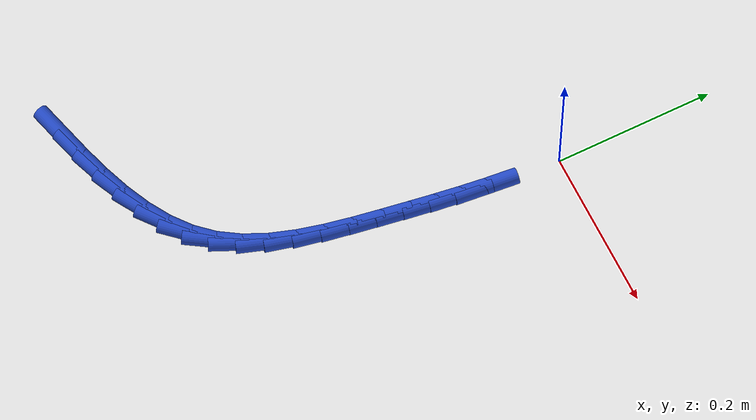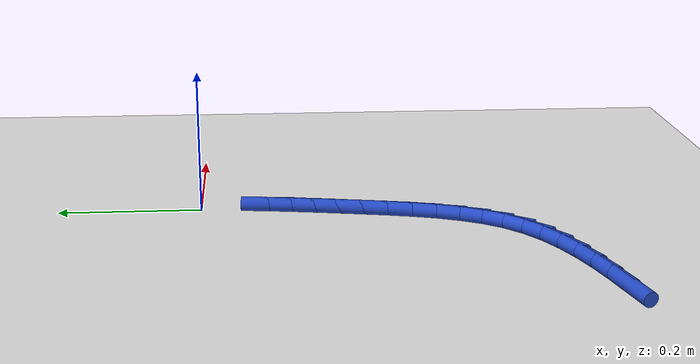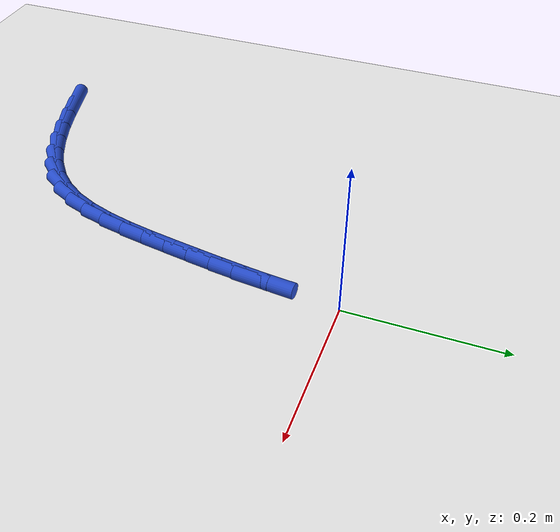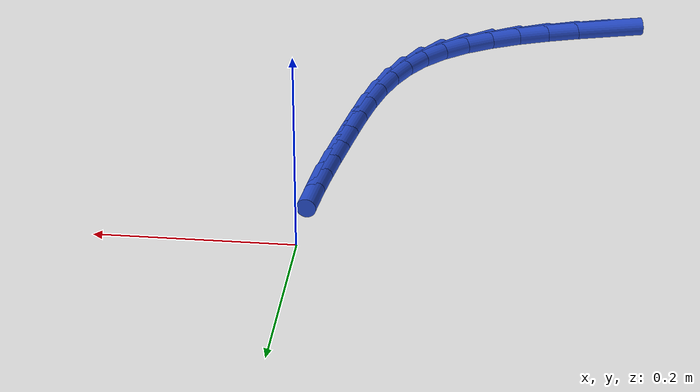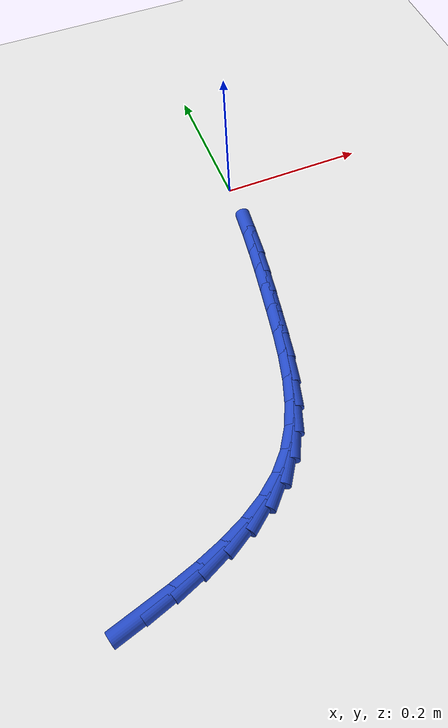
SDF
<sdf version="1.6">
 <world name="default">
  <model name="ground_plane">
   <static>1</static>
   <link name="link">
    <collision name="collision">
     <geometry><plane><normal>0 0 1</normal><size>100 100</size></plane></geometry>
     <surface><friction><ode><mu>100</mu><mu2>50</mu2></ode></friction></surface>
    </collision>
    <visual name="visual">
     <cast_shadows>0</cast_shadows>
     <geometry><plane><normal>0 0 1</normal><size>100 100</size></plane></geometry>
     <material>
      <script><uri>file://media/materials/scripts/gazebo.material</uri><name>Gazebo/WhiteGlow</name></script>
     </material>
    </visual>
   </link>
  </model>
  <model name="line">
   <link name="link_270">
    <pose>-0.2929436698664891 -0.5174589465212666 0.01 0 1.57 0.26299495571248294</pose>
    <collision name="collision">
     <geometry><cylinder><radius>0.01</radius><length>0.08</length></cylinder></geometry>
    </collision>
    <visual name="visual">
     <material>
      <script><name>Gazebo/Blue</name><uri>file://media/materials/scripts/gazebo.material</uri></script>
     </material>
     <geometry><cylinder><radius>0.01</radius><length>0.08</length></cylinder></geometry>
    </visual>
   </link>
   <link name="link_271">
    <pose>-0.25759324976361 -0.5079415172306726 0.01 0 1.57 0.2990037355906426</pose>
    <collision name="collision">
     <geometry><cylinder><radius>0.01</radius><length>0.08</length></cylinder></geometry>
    </collision>
    <visual name="visual">
     <material>
      <script><name>Gazebo/Blue</name><uri>file://media/materials/scripts/gazebo.material</uri></script>
     </material>
     <geometry><cylinder><radius>0.01</radius><length>0.08</length></cylinder></geometry>
    </visual>
   </link>
   <link name="link_272">
    <pose>-0.2232318683893138 -0.49734979358343284 0.01 0 1.57 0.3539297139825585</pose>
    <collision name="collision">
     <geometry><cylinder><radius>0.01</radius><length>0.08</length></cylinder></geometry>
    </collision>
    <visual name="visual">
     <material>
      <script><name>Gazebo/Blue</name><uri>file://media/materials/scripts/gazebo.material</uri></script>
     </material>
     <geometry><cylinder><radius>0.01</radius><length>0.08</length></cylinder></geometry>
    </visual>
   </link>
   <link name="link_273">
    <pose>-0.1904363830400373 -0.4852322471926579 0.01 0 1.57 0.4309944291069411</pose>
    <collision name="collision">
     <geometry><cylinder><radius>0.01</radius><length>0.08</length></cylinder></geometry>
    </collision>
    <visual name="visual">
     <material>
      <script><name>Gazebo/Blue</name><uri>file://media/materials/scripts/gazebo.material</uri></script>
     </material>
     <geometry><cylinder><radius>0.01</radius><length>0.08</length></cylinder></geometry>
    </visual>
   </link>
   <link name="link_274">
    <pose>-0.1597836510122173 -0.471137349671459 0.01 0 1.57 0.5341814806921824</pose>
    <collision name="collision">
     <geometry><cylinder><radius>0.01</radius><length>0.08</length></cylinder></geometry>
    </collision>
    <visual name="visual">
     <material>
      <script><name>Gazebo/Blue</name><uri>file://media/materials/scripts/gazebo.material</uri></script>
     </material>
     <geometry><cylinder><radius>0.01</radius><length>0.08</length></cylinder></geometry>
    </visual>
   </link>
   <link name="link_275">
    <pose>-0.1318505296022906 -0.45461357263294705 0.01 0 1.57 0.6671430345781535</pose>
    <collision name="collision">
     <geometry><cylinder><radius>0.01</radius><length>0.08</length></cylinder></geometry>
    </collision>
    <visual name="visual">
     <material>
      <script><name>Gazebo/Blue</name><uri>file://media/materials/scripts/gazebo.material</uri></script>
     </material>
     <geometry><cylinder><radius>0.01</radius><length>0.08</length></cylinder></geometry>
    </visual>
   </link>
   <link name="link_276">
    <pose>-0.107213876106694 -0.4352093876902332 0.01 0 1.57 0.8304591114527468</pose>
    <collision name="collision">
     <geometry><cylinder><radius>0.01</radius><length>0.08</length></cylinder></geometry>
    </collision>
    <visual name="visual">
     <material>
      <script><name>Gazebo/Blue</name><uri>file://media/materials/scripts/gazebo.material</uri></script>
     </material>
     <geometry><cylinder><radius>0.01</radius><length>0.08</length></cylinder></geometry>
    </visual>
   </link>
   <link name="link_277">
    <pose>-0.08644462447415724 -0.41247865788744603 0.01 0 1.57 1.0003382966335108</pose>
    <collision name="collision">
     <geometry><cylinder><radius>0.01</radius><length>0.08</length></cylinder></geometry>
    </collision>
    <visual name="visual">
     <material>
      <script><name>Gazebo/Blue</name><uri>file://media/materials/scripts/gazebo.material</uri></script>
     </material>
     <geometry><cylinder><radius>0.01</radius><length>0.08</length></cylinder></geometry>
    </visual>
   </link>
   <link name="link_278">
    <pose>-0.06968815930892554 -0.3863625812773658 0.01 0 1.57 1.1396983868322936</pose>
    <collision name="collision">
     <geometry><cylinder><radius>0.01</radius><length>0.08</length></cylinder></geometry>
    </collision>
    <visual name="visual">
     <material>
      <script><name>Gazebo/Blue</name><uri>file://media/materials/scripts/gazebo.material</uri></script>
     </material>
     <geometry><cylinder><radius>0.01</radius><length>0.08</length></cylinder></geometry>
    </visual>
   </link>
   <link name="link_279">
    <pose>-0.05638641445198805 -0.3574426367897214 0.01 0 1.57 1.2458564365169524</pose>
    <collision name="collision">
     <geometry><cylinder><radius>0.01</radius><length>0.08</length></cylinder></geometry>
    </collision>
    <visual name="visual">
     <material>
      <script><name>Gazebo/Blue</name><uri>file://media/materials/scripts/gazebo.material</uri></script>
     </material>
     <geometry><cylinder><radius>0.01</radius><length>0.08</length></cylinder></geometry>
    </visual>
   </link>
   <link name="link_280">
    <pose>-0.04591537983525811 -0.3263603254995566 0.01 0 1.57 1.3225427226331177</pose>
    <collision name="collision">
     <geometry><cylinder><radius>0.01</radius><length>0.08</length></cylinder></geometry>
    </collision>
    <visual name="visual">
     <material>
      <script><name>Gazebo/Blue</name><uri>file://media/materials/scripts/gazebo.material</uri></script>
     </material>
     <geometry><cylinder><radius>0.01</radius><length>0.08</length></cylinder></geometry>
    </visual>
   </link>
   <link name="link_281">
    <pose>-0.03765104539064795 -0.29375714848191165 0.01 0 1.57 1.3738276616807334</pose>
    <collision name="collision">
     <geometry><cylinder><radius>0.01</radius><length>0.08</length></cylinder></geometry>
    </collision>
    <visual name="visual">
     <material>
      <script><name>Gazebo/Blue</name><uri>file://media/materials/scripts/gazebo.material</uri></script>
     </material>
     <geometry><cylinder><radius>0.01</radius><length>0.08</length></cylinder></geometry>
    </visual>
   </link>
   <link name="link_282">
    <pose>-0.030969401050070924 -0.2602746068118299 0.01 0 1.57 1.4026801298842846</pose>
    <collision name="collision">
     <geometry><cylinder><radius>0.01</radius><length>0.08</length></cylinder></geometry>
    </collision>
    <visual name="visual">
     <material>
      <script><name>Gazebo/Blue</name><uri>file://media/materials/scripts/gazebo.material</uri></script>
     </material>
     <geometry><cylinder><radius>0.01</radius><length>0.08</length></cylinder></geometry>
    </visual>
   </link>
   <link name="link_283">
    <pose>-0.025246436745439964 -0.22655420156435363 0.01 0 1.57 1.4117490431104678</pose>
    <collision name="collision">
     <geometry><cylinder><radius>0.01</radius><length>0.08</length></cylinder></geometry>
    </collision>
    <visual name="visual">
     <material>
      <script><name>Gazebo/Blue</name><uri>file://media/materials/scripts/gazebo.material</uri></script>
     </material>
     <geometry><cylinder><radius>0.01</radius><length>0.08</length></cylinder></geometry>
    </visual>
   </link>
   <link name="link_284">
    <pose>-0.019896594795306744 -0.1932015052207693 0.01 0 1.57 1.416759293887595</pose>
    <collision name="collision">
     <geometry><cylinder><radius>0.01</radius><length>0.08</length></cylinder></geometry>
    </collision>
    <visual name="visual">
     <material>
      <script><name>Gazebo/Blue</name><uri>file://media/materials/scripts/gazebo.material</uri></script>
     </material>
     <geometry><cylinder><radius>0.01</radius><length>0.08</length></cylinder></geometry>
    </visual>
   </link>
   <link name="link_285">
    <pose>-0.014801380248697647 -0.16038568283570534 0.01 0 1.57 1.4283154166167495</pose>
    <collision name="collision">
     <geometry><cylinder><radius>0.01</radius><length>0.08</length></cylinder></geometry>
    </collision>
    <visual name="visual">
     <material>
      <script><name>Gazebo/Blue</name><uri>file://media/materials/scripts/gazebo.material</uri></script>
     </material>
     <geometry><cylinder><radius>0.01</radius><length>0.08</length></cylinder></geometry>
    </visual>
   </link>
   <link name="link_286">
    <pose>-0.010153432924309565 -0.1279851857859133 0.01 0 1.57 1.4467971302079827</pose>
    <collision name="collision">
     <geometry><cylinder><radius>0.01</radius><length>0.08</length></cylinder></geometry>
    </collision>
    <visual name="visual">
     <material>
      <script><name>Gazebo/Blue</name><uri>file://media/materials/scripts/gazebo.material</uri></script>
     </material>
     <geometry><cylinder><radius>0.01</radius><length>0.08</length></cylinder></geometry>
    </visual>
   </link>
   <link name="link_287">
    <pose>-0.006151037029694125 -0.09587319152441989 0.01 0 1.57 1.4722579952913695</pose>
    <collision name="collision">
     <geometry><cylinder><radius>0.01</radius><length>0.08</length></cylinder></geometry>
    </collision>
    <visual name="visual">
     <material>
      <script><name>Gazebo/Blue</name><uri>file://media/materials/scripts/gazebo.material</uri></script>
     </material>
     <geometry><cylinder><radius>0.01</radius><length>0.08</length></cylinder></geometry>
    </visual>
   </link>
  </model>
 </world>
</sdf>
